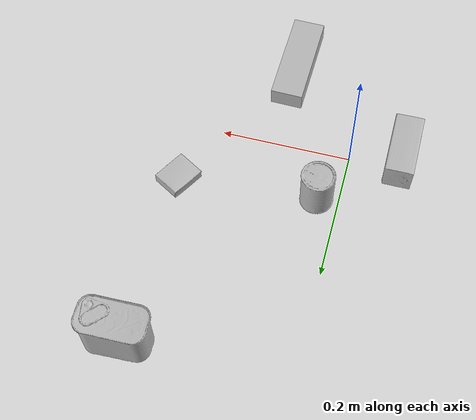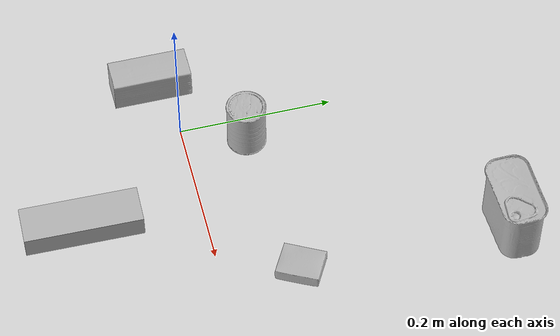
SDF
<sdf version="1.4">
  <world name="default">
    <light name="light1" type="point">
      <pose>0 0 1 0 0 0</pose>
      <diffuse>3 3 3 1</diffuse>
      <specular>3 3 3 1</specular>
    </light>
    <light name="light2" type="point">
      <pose>0 0.5 2 0 0 0</pose>
      <diffuse>1 1 1 1</diffuse>
      <specular>1 1 1 1</specular>
    </light>
    <light name="light3" type="point">
      <pose>0 0.5 2 0 0 0</pose>
      <diffuse>3 3 3 1</diffuse>
      <specular>3 3 3 1</specular>
    </light>
    <scene>
      <ambient>0.7 0.7 0.7</ambient>
    </scene>
    <model name="box1">
      <link name="link_box1">
        <collision name="default">
          <geometry>
            <mesh>
              <uri>model://pudding_box/collision_meshes/collision.obj</uri>
              <scale>0.5 0.5 0.5</scale>
            </mesh>
          </geometry>
          <surface>
            <friction>
              <ode>
                <mu>0.5</mu>
                <mu2>0.5</mu2>
              </ode>
            </friction>
          <contact>
        <ode>
            <max_vel>0</max_vel>
            <min_depth>0.0001</min_depth>
            <kp>1e8</kp>
        </ode>
    </contact></surface>
        </collision>
        <visual name="default">
          <geometry>
            <mesh>
              <uri>model://pudding_box/visual_meshes/visual.dae</uri>
              <scale>0.5 0.5 0.5</scale>
            </mesh>
          </geometry>
        </visual>
        <inertial>
          <mass>0.0642586499452591</mass>
          <pose>0.00024474109522998333 0.00040339428232982755 -0.0002594413817860186 0.005213101302141142 -0.006603800581388343 0.020079827019462423</pose>
          <inertia>
            <ixx>1.8160274e-05</ixx>
            <iyy>1.221836e-05</iyy>
            <izz>2.6818392e-05</izz>
            <ixy>0</ixy>
            <ixz>0</ixz>
            <iyz>0</iyz>
          </inertia>
        </inertial>
      </link>
      <pose>0.244218647480011 0.09785676002502441 0.009862905368208885 0.022348472313903234 -0.011391731099482712 -0.5139742447551534</pose>
    </model>
    <model name="box2">
      <link name="link_box2">
        <collision name="default">
          <geometry>
            <mesh>
              <uri>model://wood_block/collision_meshes/collision.obj</uri>
              <scale>0.5 0.5 0.5</scale>
            </mesh>
          </geometry>
          <surface>
            <friction>
              <ode>
                <mu>0.5</mu>
                <mu2>0.5</mu2>
              </ode>
            </friction>
          <contact>
        <ode>
            <max_vel>0</max_vel>
            <min_depth>0.0001</min_depth>
            <kp>1e8</kp>
        </ode>
    </contact></surface>
        </collision>
        <visual name="default">
          <geometry>
            <mesh>
              <uri>model://wood_block/visual_meshes/visual.dae</uri>
              <scale>0.5 0.5 0.5</scale>
            </mesh>
          </geometry>
        </visual>
        <inertial>
          <mass>0.2432606816291809</mass>
          <pose>-2.9066577553749084e-06 -0.000285404734313488 0.00013204290007706732 -0.0522103103121059 -0.005192696448147362 -0.0068613788455752145</pose>
          <inertia>
            <ixx>8.1379905e-05</ixx>
            <iyy>0.0002570791</iyy>
            <izz>0.00025611752</izz>
            <ixy>0</ixy>
            <ixz>0</ixz>
            <iyz>0</iyz>
          </inertia>
        </inertial>
      </link>
      <pose>-0.07841073721647263 -0.02276422269642353 0.022629257291555405 -0.005208588416519021 0.005718776004633518 1.5743837984315971</pose>
    </model>
    <model name="box3">
      <link name="link_box3">
        <collision name="default">
          <geometry>
            <mesh>
              <uri>model://jenga/collision_meshes/collision.obj</uri>
              <scale>1.0 1.0 1.0</scale>
            </mesh>
          </geometry>
          <surface>
            <friction>
              <ode>
                <mu>0.5</mu>
                <mu2>0.5</mu2>
              </ode>
            </friction>
          <contact>
        <ode>
            <max_vel>0</max_vel>
            <min_depth>0.0001</min_depth>
            <kp>1e8</kp>
        </ode>
    </contact></surface>
        </collision>
        <visual name="default">
          <geometry>
            <mesh>
              <uri>model://jenga/visual_meshes/visual.dae</uri>
              <scale>1.0 1.0 1.0</scale>
            </mesh>
          </geometry>
        </visual>
        <inertial>
          <mass>0.20405839383602142</mass>
          <pose>-2.502855807051674e-07 -0.00010250010382151231 -4.0923401684267446e-05 0.0 -7.342155186052628e-07 0.0</pose>
          <inertia>
            <ixx>5.6467907e-05</ixx>
            <iyy>0.000382625</iyy>
            <izz>0.00040848472</izz>
            <ixy>0</ixy>
            <ixz>0</ixz>
            <iyz>0</iyz>
          </inertia>
        </inertial>
      </link>
      <pose>0.11713384836912155 -0.15170669555664062 0.014999997802078724 -2.8128529747704185e-09 7.595694632586118e-10 -1.5906740725124675</pose>
    </model>
    <model name="can1">
      <link name="link_can1">
        <collision name="default">
          <geometry>
            <mesh>
              <uri>model://potted_meat_can/collision_meshes/collision.obj</uri>
              <scale>1.0 1.0 1.0</scale>
            </mesh>
          </geometry>
          <surface>
            <friction>
              <ode>
                <mu>0.5</mu>
                <mu2>0.5</mu2>
              </ode>
            </friction>
          <contact>
        <ode>
            <max_vel>0</max_vel>
            <min_depth>0.0001</min_depth>
            <kp>1e8</kp>
        </ode>
    </contact></surface>
        </collision>
        <visual name="default">
          <geometry>
            <mesh>
              <uri>model://potted_meat_can/visual_meshes/visual.dae</uri>
              <scale>1.0 1.0 1.0</scale>
            </mesh>
          </geometry>
        </visual>
        <inertial>
          <mass>0.4665880799293518</mass>
          <pose>0.0002288814284838736 -5.989112105453387e-05 -0.0006367449532262981 -0.028093382538733707 -0.007232605550223235 0.01540626728411476</pose>
          <inertia>
            <ixx>0.0006002166</ixx>
            <iyy>0.0003646772</iyy>
            <izz>0.00043654343</izz>
            <ixy>0</ixy>
            <ixz>0</ixz>
            <iyz>0</iyz>
          </inertia>
        </inertial>
      </link>
      <pose>0.24846552312374115 0.3677009344100952 0.04212801530957222 -5.878193753458491e-08 -4.623261406634364e-07 1.5840186204040023</pose>
    </model>
    <model name="can2">
      <link name="link_can2">
        <collision name="default">
          <geometry>
            <mesh>
              <uri>model://master_chef_can/collision_meshes/collision.obj</uri>
              <scale>0.5 0.5 0.5</scale>
            </mesh>
          </geometry>
          <surface>
            <friction>
              <ode>
                <mu>0.5</mu>
                <mu2>0.5</mu2>
              </ode>
            </friction>
          <contact>
        <ode>
            <max_vel>0</max_vel>
            <min_depth>0.0001</min_depth>
            <kp>1e8</kp>
        </ode>
    </contact></surface>
        </collision>
        <visual name="default">
          <geometry>
            <mesh>
              <uri>model://master_chef_can/visual_meshes/visual.dae</uri>
              <scale>0.5 0.5 0.5</scale>
            </mesh>
          </geometry>
        </visual>
        <inertial>
          <mass>0.1648906171321869</mass>
          <pose>-4.661964703700505e-05 1.3926853625889635e-07 -5.079993206891231e-05 -0.0017995099244119924 0.0006479308957776391 -0.6102586503741109</pose>
          <inertia>
            <ixx>9.677961e-05</ixx>
            <iyy>9.606731e-05</iyy>
            <izz>5.3478136e-05</izz>
            <ixy>0</ixy>
            <ixz>0</ixz>
            <iyz>0</iyz>
          </inertia>
        </inertial>
      </link>
      <pose>0.03358826786279678 0.0803232342004776 0.03530199080705643 -1.5594529193600808e-06 -6.960534197512011e-07 0.20715306147335608</pose>
    </model>
  <physics type="ode">
      <max_contacts>50</max_contacts>
      <ode>
        <solver>
          <type>quick</type>
          <iters>75</iters>
        </solver>
        <constraints>
          <contact_max_correcting_vel>0</contact_max_correcting_vel>
          <contact_surface_layer>0</contact_surface_layer>
        </constraints>
      </ode>
    </physics></world>
</sdf>
